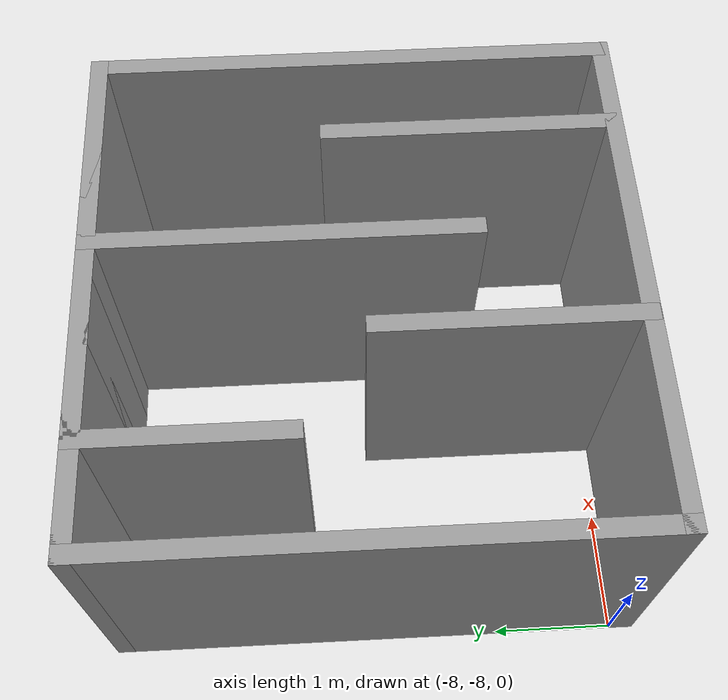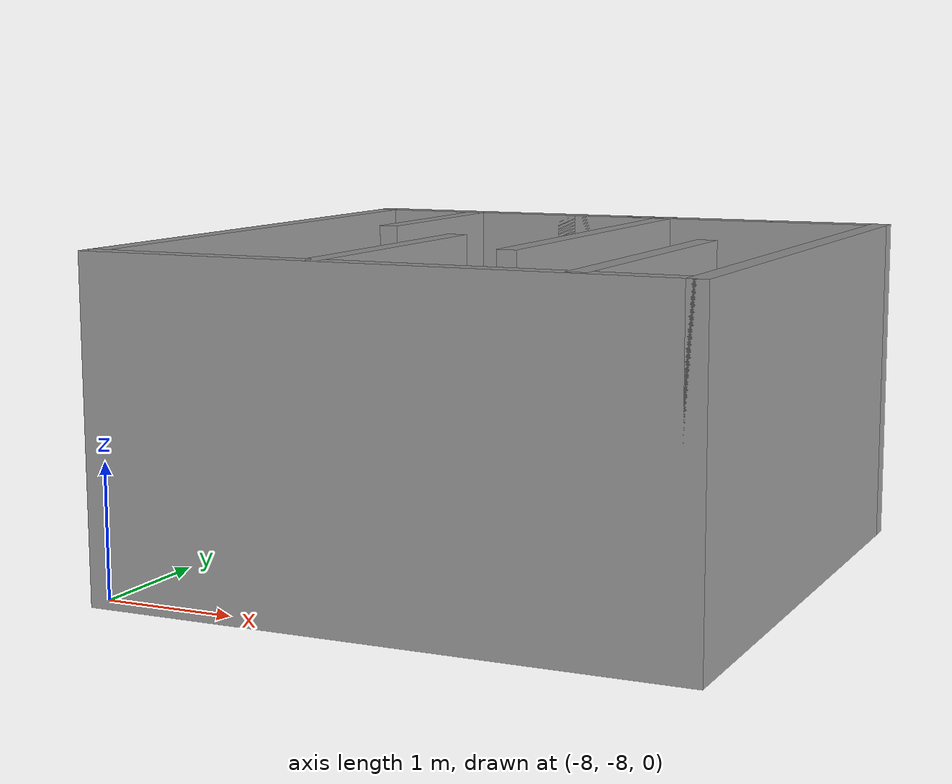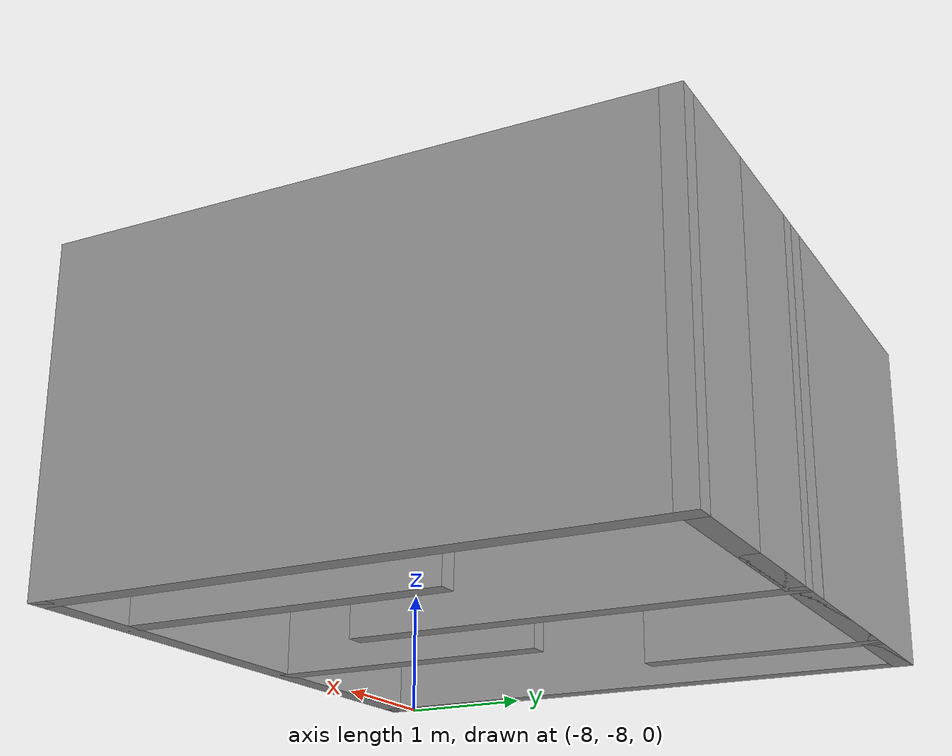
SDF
<?xml version='1.0'?>
<sdf version='1.7'>
  <model name='level3'>
    <pose>-4.00584 -4.10155 0 0 -0 0</pose>
    <link name='Wall_37'>
      <collision name='Wall_37_Collision'>
        <geometry>
          <box>
            <size>4.5 0.15 2.5</size>
          </box>
        </geometry>
        <pose>0 0 1.25 0 -0 0</pose>
      </collision>
      <visual name='Wall_37_Visual'>
        <pose>0 0 1.25 0 -0 0</pose>
        <geometry>
          <box>
            <size>4.5 0.15 2.5</size>
          </box>
        </geometry>
        <material>
          <script>
            <uri>file://media/materials/scripts/gazebo.material</uri>
            <name>Gazebo/Grey</name>
          </script>
          <ambient>1 1 1 1</ambient>
        </material>
        <meta>
          <layer>0</layer>
        </meta>
      </visual>
      <pose>-3.93084 -1.85155 0 0 -0 -1.5708</pose>
    </link>
    <link name='Wall_38'>
      <collision name='Wall_38_Collision'>
        <geometry>
          <box>
            <size>4.5 0.15 2.5</size>
          </box>
        </geometry>
        <pose>0 0 1.25 0 -0 0</pose>
      </collision>
      <visual name='Wall_38_Visual'>
        <pose>0 0 1.25 0 -0 0</pose>
        <geometry>
          <box>
            <size>4.5 0.15 2.5</size>
          </box>
        </geometry>
        <material>
          <script>
            <uri>file://media/materials/scripts/gazebo.material</uri>
            <name>Gazebo/Grey</name>
          </script>
          <ambient>1 1 1 1</ambient>
        </material>
        <meta>
          <layer>0</layer>
        </meta>
      </visual>
      <pose>-1.75584 -4.02655 0 0 -0 0</pose>
    </link>
    <link name='Wall_39'>
      <collision name='Wall_39_Collision'>
        <geometry>
          <box>
            <size>4.5 0.15 2.5</size>
          </box>
        </geometry>
        <pose>0 0 1.25 0 -0 0</pose>
      </collision>
      <visual name='Wall_39_Visual'>
        <pose>0 0 1.25 0 -0 0</pose>
        <geometry>
          <box>
            <size>4.5 0.15 2.5</size>
          </box>
        </geometry>
        <material>
          <script>
            <uri>file://media/materials/scripts/gazebo.material</uri>
            <name>Gazebo/Grey</name>
          </script>
          <ambient>1 1 1 1</ambient>
        </material>
        <meta>
          <layer>0</layer>
        </meta>
      </visual>
      <pose>0.419163 -1.85155 0 0 -0 1.5708</pose>
    </link>
    <link name='Wall_40'>
      <collision name='Wall_40_Collision'>
        <geometry>
          <box>
            <size>4.5 0.15 2.5</size>
          </box>
        </geometry>
        <pose>0 0 1.25 0 -0 0</pose>
      </collision>
      <visual name='Wall_40_Visual'>
        <pose>0 0 1.25 0 -0 0</pose>
        <geometry>
          <box>
            <size>4.5 0.15 2.5</size>
          </box>
        </geometry>
        <material>
          <script>
            <uri>file://media/materials/scripts/gazebo.material</uri>
            <name>Gazebo/Grey</name>
          </script>
          <ambient>1 1 1 1</ambient>
        </material>
        <meta>
          <layer>0</layer>
        </meta>
      </visual>
      <pose>-1.75584 0.323448 0 0 -0 3.14159</pose>
    </link>
    <link name='Wall_42'>
      <collision name='Wall_42_Collision'>
        <geometry>
          <box>
            <size>1 0.15 2.5</size>
          </box>
        </geometry>
        <pose>0 0 1.25 0 -0 0</pose>
      </collision>
      <visual name='Wall_42_Visual'>
        <pose>0 0 1.25 0 -0 0</pose>
        <geometry>
          <box>
            <size>1 0.15 2.5</size>
          </box>
        </geometry>
        <material>
          <script>
            <uri>file://media/materials/scripts/gazebo.material</uri>
            <name>Gazebo/Grey</name>
          </script>
          <ambient>1 1 1 1</ambient>
        </material>
        <meta>
          <layer>0</layer>
        </meta>
      </visual>
      <pose>-3.50584 0.323448 0 0 -0 0</pose>
    </link>
    <link name='Wall_43'>
      <collision name='Wall_43_Collision'>
        <geometry>
          <box>
            <size>1.75 0.15 2.5</size>
          </box>
        </geometry>
        <pose>0 0 1.25 0 -0 0</pose>
      </collision>
      <visual name='Wall_43_Visual'>
        <pose>0 0 1.25 0 -0 0</pose>
        <geometry>
          <box>
            <size>1.75 0.15 2.5</size>
          </box>
        </geometry>
        <material>
          <script>
            <uri>file://media/materials/scripts/gazebo.material</uri>
            <name>Gazebo/Grey</name>
          </script>
          <ambient>1 1 1 1</ambient>
        </material>
        <meta>
          <layer>0</layer>
        </meta>
      </visual>
      <pose>-3.08084 -0.476552 0 0 -0 -1.5708</pose>
    </link>
    <link name='Wall_45'>
      <collision name='Wall_45_Collision'>
        <geometry>
          <box>
            <size>1 0.15 2.5</size>
          </box>
        </geometry>
        <pose>0 0 1.25 0 -0 0</pose>
      </collision>
      <visual name='Wall_45_Visual'>
        <pose>0 0 1.25 0 -0 0</pose>
        <geometry>
          <box>
            <size>1 0.15 2.5</size>
          </box>
        </geometry>
        <material>
          <script>
            <uri>file://media/materials/scripts/gazebo.material</uri>
            <name>Gazebo/Grey</name>
          </script>
          <ambient>1 1 1 1</ambient>
        </material>
        <meta>
          <layer>0</layer>
        </meta>
      </visual>
      <pose>-2.65584 0.323448 0 0 -0 0</pose>
    </link>
    <link name='Wall_48'>
      <collision name='Wall_48_Collision'>
        <geometry>
          <box>
            <size>1 0.15 2.5</size>
          </box>
        </geometry>
        <pose>0 0 1.25 0 -0 0</pose>
      </collision>
      <visual name='Wall_48_Visual'>
        <pose>0 0 1.25 0 -0 0</pose>
        <geometry>
          <box>
            <size>1 0.15 2.5</size>
          </box>
        </geometry>
        <material>
          <script>
            <uri>file://media/materials/scripts/gazebo.material</uri>
            <name>Gazebo/Grey</name>
          </script>
          <ambient>1 1 1 1</ambient>
        </material>
        <meta>
          <layer>0</layer>
        </meta>
      </visual>
      <pose>-1.80584 0.323448 0 0 -0 0</pose>
    </link>
    <link name='Wall_49'>
      <collision name='Wall_49_Collision'>
        <geometry>
          <box>
            <size>3.25 0.15 2.5</size>
          </box>
        </geometry>
        <pose>0 0 1.25 0 -0 0</pose>
      </collision>
      <visual name='Wall_49_Visual'>
        <pose>0 0 1.25 0 -0 0</pose>
        <geometry>
          <box>
            <size>3.25 0.15 2.5</size>
          </box>
        </geometry>
        <material>
          <script>
            <uri>file://media/materials/scripts/gazebo.material</uri>
            <name>Gazebo/Grey</name>
          </script>
          <ambient>1 1 1 1</ambient>
        </material>
        <meta>
          <layer>0</layer>
        </meta>
      </visual>
      <pose>-1.38084 -1.22655 0 0 -0 -1.5708</pose>
    </link>
    <link name='Wall_51'>
      <collision name='Wall_51_Collision'>
        <geometry>
          <box>
            <size>1 0.15 2.5</size>
          </box>
        </geometry>
        <pose>0 0 1.25 0 -0 0</pose>
      </collision>
      <visual name='Wall_51_Visual'>
        <pose>0 0 1.25 0 -0 0</pose>
        <geometry>
          <box>
            <size>1 0.15 2.5</size>
          </box>
        </geometry>
        <material>
          <script>
            <uri>file://media/materials/scripts/gazebo.material</uri>
            <name>Gazebo/Grey</name>
          </script>
          <ambient>1 1 1 1</ambient>
        </material>
        <meta>
          <layer>0</layer>
        </meta>
      </visual>
      <pose>-0.955837 0.323448 0 0 -0 0</pose>
    </link>
    <link name='Wall_54'>
      <collision name='Wall_54_Collision'>
        <geometry>
          <box>
            <size>2.25 0.15 2.5</size>
          </box>
        </geometry>
        <pose>0 0 1.25 0 -0 0</pose>
      </collision>
      <visual name='Wall_54_Visual'>
        <pose>0 0 1.25 0 -0 0</pose>
        <geometry>
          <box>
            <size>2.25 0.15 2.5</size>
          </box>
        </geometry>
        <material>
          <script>
            <uri>file://media/materials/scripts/gazebo.material</uri>
            <name>Gazebo/Grey</name>
          </script>
          <ambient>1 1 1 1</ambient>
        </material>
        <meta>
          <layer>0</layer>
        </meta>
      </visual>
      <pose>-2.23771 -2.97118 0 0 -0 1.5708</pose>
    </link>
    <link name='Wall_56'>
      <collision name='Wall_56_Collision'>
        <geometry>
          <box>
            <size>2.5 0.15 2.5</size>
          </box>
        </geometry>
        <pose>0 0 1.25 0 -0 0</pose>
      </collision>
      <visual name='Wall_56_Visual'>
        <pose>0 0 1.25 0 -0 0</pose>
        <geometry>
          <box>
            <size>2.5 0.15 2.5</size>
          </box>
        </geometry>
        <material>
          <script>
            <uri>file://media/materials/scripts/gazebo.material</uri>
            <name>Gazebo/Grey</name>
          </script>
          <ambient>1 1 1 1</ambient>
        </material>
        <meta>
          <layer>0</layer>
        </meta>
      </visual>
      <pose>-0.376935 -2.80673 0 0 -0 1.5708</pose>
    </link>
    <static>1</static>
  </model>
</sdf>
